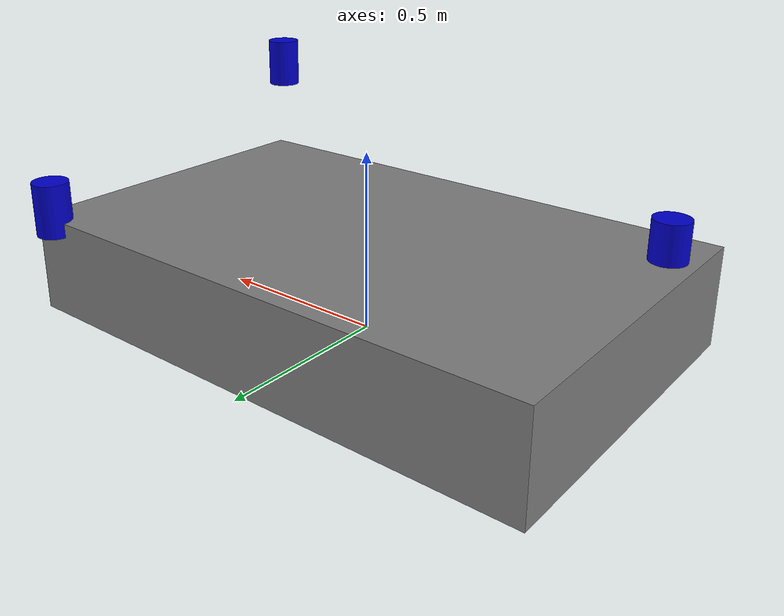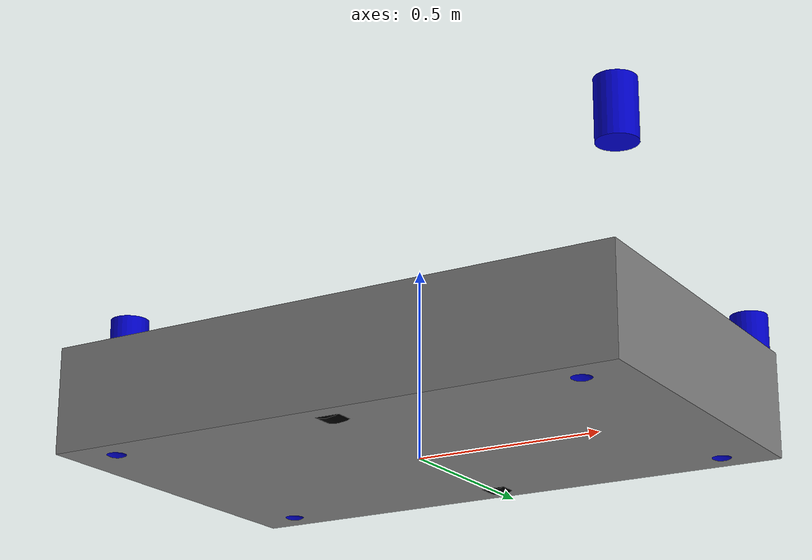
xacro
<?xml version="1.0" ?>
<robot name="agv" xmlns:xacro="http://ros.org/wiki/xacro">

  <!-- Configurations & Parameters -->
  <xacro:include filename="config/common_properties.xacro"/>
  <xacro:include filename="config/robot_dimensions.xacro"/>
  <xacro:include filename="config/lidar_correction.xacro"/>
  <xacro:include filename="config/camera_correction.xacro"/>
  <xacro:include filename="config/imu_joint.xacro"/>
  <xacro:include filename="agv.macros.xacro"/>
  <xacro:include filename="agv.gazebo.xacro"/>

  <!-- Base Footprint (Ground Plane Z=0) to Base Link Elevation -->
  <link name="base_footprint"/>
  <joint name="base_footprint_to_base_link_joint" type="fixed">
    <parent link="base_footprint"/>
    <child link="base_link"/>
    <origin xyz="0 0 ${-ground_contact_z}" rpy="0 0 0"/>
  </joint>

  <link name="base_link">
    <collision><geometry><box size="${chassis_length} ${chassis_width} ${chassis_height}"/></geometry></collision>
    <visual><geometry><box size="${chassis_length} ${chassis_width} ${chassis_height}"/></geometry><material name="grey"/></visual>
    <!-- Measured/CAD empirical mass matrix including internal battery/payload asymmetry -->
    <inertial>
      <mass value="${chassis_mass}" />
      <inertia ixx="3.9687" ixy="0.28534" ixz="0.11898" iyy="11.378" iyz="0.00735" izz="8.1939" />
    </inertial>
  </link>

  <!-- Drive Wheels (Symmetric Mounting based on wheel_track) -->
  <xacro:wheel wheel_side="left"  offset_y="${wheel_track / 2}"/>
  <xacro:wheel wheel_side="right" offset_y="${-wheel_track / 2}"/>

  <!-- Caster Wheel Pairs (Front & Back) -->
  <xacro:caster_pair location="front" offset_x="${caster_offset_x}"  offset_y="${caster_offset_y}" mass="${caster_mass}"/>
  <xacro:caster_pair location="back"  offset_x="${-caster_offset_x}" offset_y="${caster_offset_y}" mass="${caster_mass}"/>

  <!-- 2D & 3D LiDAR Sensors (Kinematics + Simulation Stream) -->
  <xacro:lidar_sensor name="front_lidar" x="${front_lidar_x}" y="${front_lidar_y}" z="${front_lidar_z}" roll="${front_lidar_roll}" pitch="${front_lidar_pitch}" yaw="${front_lidar_yaw}" topic_name="/front_lidar/scan" min_angle="-2.356" max_angle="2.356"/>
  <xacro:lidar_sensor name="rear_lidar"  x="${rear_lidar_x}"  y="${rear_lidar_y}"  z="${rear_lidar_z}"  roll="${rear_lidar_roll}"  pitch="${rear_lidar_pitch}"  yaw="${rear_lidar_yaw}"  topic_name="/rear_lidar/scan" min_angle="-2.356" max_angle="2.356"/>
  <xacro:lidar_sensor name="lidar_3d"    x="${lidar_3d_x}"    y="${lidar_3d_y}"    z="${lidar_3d_z}"    roll="${lidar_3d_roll}"    pitch="${lidar_3d_pitch}"    yaw="${lidar_3d_yaw}"    topic_name="/lidar_3d/points" mass="1.5" samples="1800" v_samples="16" v_min_angle="-0.261799" v_max_angle="0.261799" min_range="0.20" max_range="50.0" update_rate="10.0" noise_stddev="0.02"/>

  <!-- IMU Sensor -->
  <link name="imu_link">
    <visual>
      <geometry><box size="0.05 0.05 0.02"/></geometry>
      <material name="black"/>
    </visual>
  </link>
  <joint name="imu_joint" type="fixed">
    <parent link="base_link"/>
    <child link="imu_link"/>
    <origin xyz="${imu_x} ${imu_y} ${imu_z}" rpy="${imu_roll} ${imu_pitch} ${imu_yaw}"/>
  </joint>

  <!-- Cameras (Mounts + Optical Frames + Simulation Stream) -->
  <xacro:camera_mount name="camera_front_left"  x="${camera_front_left_x}"  y="${camera_front_left_y}"  z="${camera_front_left_z}"  roll="${camera_front_left_roll}"  pitch="${camera_front_left_pitch}"  yaw="${camera_front_left_yaw}"/>
  <xacro:camera_mount name="camera_front_right" x="${camera_front_right_x}" y="${camera_front_right_y}" z="${camera_front_right_z}" roll="${camera_front_right_roll}" pitch="${camera_front_right_pitch}" yaw="${camera_front_right_yaw}"/>
  <xacro:camera_mount name="camera_rear_left"   x="${camera_rear_left_x}"   y="${camera_rear_left_y}"   z="${camera_rear_left_z}"   roll="${camera_rear_left_roll}"   pitch="${camera_rear_left_pitch}"   yaw="${camera_rear_left_yaw}"/>
  <xacro:camera_mount name="camera_rear_right"  x="${camera_rear_right_x}"  y="${camera_rear_right_y}"  z="${camera_rear_right_z}"  roll="${camera_rear_right_roll}"  pitch="${camera_rear_right_pitch}"  yaw="${camera_rear_right_yaw}"/>

</robot>

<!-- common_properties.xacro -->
<robot name="agv" xmlns:xacro="http://ros.org/wiki/xacro">

  <!-- Active Color Definitions -->
  <material name="black">
    <color rgba="0.0 0.0 0.0 1.0"/>
  </material>

  <material name="blue">
    <color rgba="0.0 0.0 0.8 1.0"/>
  </material>

  <material name="grey">
    <color rgba="0.5 0.5 0.5 1.0"/>
  </material>

</robot>

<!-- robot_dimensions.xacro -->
<robot name="agv" xmlns:xacro="http://ros.org/wiki/xacro">

  <!-- Chassis Physical Dimensions & Mass -->
  <xacro:property name="chassis_length" value="1.558"/>
  <xacro:property name="chassis_width"  value="0.965"/>
  <xacro:property name="chassis_height" value="0.280"/>
  <xacro:property name="chassis_mass"   value="300.0"/>

  <!-- Drive Wheel Dimensions & Kinematics -->
  <xacro:property name="wheel_width"    value="0.05"/>
  <xacro:property name="wheel_radius"   value="0.100"/>
  <xacro:property name="wheel_mass"     value="2.0"/>
  <xacro:property name="wheel_track"    value="0.81298"/>
  <xacro:property name="wheel_offset_z" value="-0.04625"/>

  <!-- Ground Plane Contact Level (Z = -0.14625 m relative to base_link) -->
  <xacro:property name="ground_contact_z" value="${wheel_offset_z - wheel_radius}"/>

  <!-- Caster Wheel Dimensions & Placement (Coplanar with drive wheels at ground level) -->
  <xacro:property name="caster_radius"    value="0.062"/>
  <xacro:property name="caster_offset_x"  value="0.650"/>
  <xacro:property name="caster_offset_y"  value="0.400"/>
  <xacro:property name="caster_offset_z"  value="${ground_contact_z + caster_radius}"/>
  <xacro:property name="caster_mass"      value="5.2"/>

</robot>

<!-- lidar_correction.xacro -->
<robot name="agv" xmlns:xacro="http://ros.org/wiki/xacro">

  <!-- Front LiDAR Calibration Offsets -->
  <xacro:property name="front_lidar_x" value="0.71179" />
  <xacro:property name="front_lidar_y" value="0.47912" />
  <xacro:property name="front_lidar_z" value="0.17501" />
  <xacro:property name="front_lidar_roll" value="-3.1416" />
  <xacro:property name="front_lidar_pitch" value="0.0" />
  <xacro:property name="front_lidar_yaw" value="0.768395" />

  <!-- Rear LiDAR Calibration Offsets -->
  <xacro:property name="rear_lidar_x" value="-0.70179" />
  <xacro:property name="rear_lidar_y" value="-0.30912" />
  <xacro:property name="rear_lidar_z" value="0.17501" />
  <xacro:property name="rear_lidar_roll" value="-3.1416" />
  <xacro:property name="rear_lidar_pitch" value="0.0" />
  <xacro:property name="rear_lidar_yaw" value="-2.33875" />

  <!-- 3D LiDAR Calibration Offsets -->
  <xacro:property name="lidar_3d_x" value="0.82726" />
  <xacro:property name="lidar_3d_y" value="-0.55936" />
  <xacro:property name="lidar_3d_z" value="0.40005" />
  <xacro:property name="lidar_3d_roll" value="-3.1416" />
  <xacro:property name="lidar_3d_pitch" value="0.0" />
  <xacro:property name="lidar_3d_yaw" value="-2.33875" />

</robot>

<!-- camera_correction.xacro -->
<robot name="agv" xmlns:xacro="http://ros.org/wiki/xacro">

  <!-- Front Left Camera Mount Offsets -->
  <xacro:property name="camera_front_left_x" value="0.73448"/>
  <xacro:property name="camera_front_left_y" value="0.1567"/>
  <xacro:property name="camera_front_left_z" value="0.1225"/>
  <xacro:property name="camera_front_left_roll" value="0.0"/>
  <xacro:property name="camera_front_left_pitch" value="0.0"/>
  <xacro:property name="camera_front_left_yaw" value="-0.5236"/>

  <!-- Front Right Camera Mount Offsets -->
  <xacro:property name="camera_front_right_x" value="0.73448"/>
  <xacro:property name="camera_front_right_y" value="-0.1567"/>
  <xacro:property name="camera_front_right_z" value="0.1225"/>
  <xacro:property name="camera_front_right_roll" value="0.0"/>
  <xacro:property name="camera_front_right_pitch" value="0.0"/>
  <xacro:property name="camera_front_right_yaw" value="0.5236"/>

  <!-- Rear Left Camera Mount Offsets -->
  <xacro:property name="camera_rear_left_x" value="-0.73558"/>
  <xacro:property name="camera_rear_left_y" value="0.1568"/>
  <xacro:property name="camera_rear_left_z" value="0.1225"/>
  <xacro:property name="camera_rear_left_roll" value="0.0"/>
  <xacro:property name="camera_rear_left_pitch" value="0.0"/>
  <xacro:property name="camera_rear_left_yaw" value="-2.618"/>

  <!-- Rear Right Camera Mount Offsets -->
  <xacro:property name="camera_rear_right_x" value="-0.73558"/>
  <xacro:property name="camera_rear_right_y" value="-0.1568"/>
  <xacro:property name="camera_rear_right_z" value="0.1225"/>
  <xacro:property name="camera_rear_right_roll" value="0.0"/>
  <xacro:property name="camera_rear_right_pitch" value="0.0"/>
  <xacro:property name="camera_rear_right_yaw" value="2.618"/>

</robot>

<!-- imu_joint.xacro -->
<robot name="agv" xmlns:xacro="http://ros.org/wiki/xacro">

  <!-- IMU Sensor Calibration Offsets -->
  <xacro:property name="imu_x" value="0.0"/>
  <xacro:property name="imu_y" value="0.0"/>
  <xacro:property name="imu_z" value="0.100"/>
  <xacro:property name="imu_roll" value="0.0"/>
  <xacro:property name="imu_pitch" value="0.0"/>
  <xacro:property name="imu_yaw" value="0.0"/>

</robot>

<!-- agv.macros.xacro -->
<robot xmlns:xacro="http://ros.org/wiki/xacro">

  <!-- Inertia Calculation Helpers -->
  <xacro:macro name="cylinder_inertia" params="mass radius length">
    <inertia  ixx="${mass*(3*radius*radius + length*length)/12}" ixy="0" ixz="0"
              iyy="${mass*(3*radius*radius + length*length)/12}" iyz="0"
              izz="${mass*radius*radius/2}" />
  </xacro:macro>

  <xacro:macro name="box_inertia" params="mass size_x size_y size_z">
    <inertia  ixx="${mass*(size_y*size_y + size_z*size_z)/12}" ixy="0" ixz="0"
              iyy="${mass*(size_x*size_x + size_z*size_z)/12}" iyz="0"
              izz="${mass*(size_x*size_x + size_y*size_y)/12}" />
  </xacro:macro>

  <xacro:macro name="sphere_inertia" params="mass radius">
    <inertia ixx="${2*mass*radius*radius/5}" ixy="0" ixz="0"
             iyy="${2*mass*radius*radius/5}" iyz="0"
             izz="${2*mass*radius*radius/5}" />
  </xacro:macro>

  <!-- Drive Wheel Macro -->
  <xacro:macro name="wheel" params="wheel_side offset_y">
    <joint name="${wheel_side}_wheel_joint" type="continuous">
      <parent link="base_link"/>
      <child link="${wheel_side}_wheel"/>
      <origin xyz="0.0 ${offset_y} ${wheel_offset_z}" rpy="-1.57 0 0"/>
      <axis xyz="0 0 1"/>
    </joint>

    <link name="${wheel_side}_wheel">
      <visual>
        <geometry><cylinder length="${wheel_width}" radius="${wheel_radius}"/></geometry>
        <material name="black"/>
      </visual>
      <collision>
        <geometry><cylinder length="${wheel_width}" radius="${wheel_radius}"/></geometry>
      </collision>
      <inertial>
        <mass value="${wheel_mass}" />
        <xacro:cylinder_inertia mass="${wheel_mass}" radius="${wheel_radius}" length="${wheel_width}"/>
      </inertial>
    </link>
    <gazebo reference="${wheel_side}_wheel">
      <mu1>10.0</mu1>
      <mu2>10.0</mu2>
      <kp>500000.0</kp>
      <kd>10.0</kd>
      <maxVel>1.1</maxVel>
      <material>Gazebo/Black</material>
    </gazebo>
  </xacro:macro>

  <!-- Single Passive Caster Macro -->
  <xacro:macro name="caster" params="prefix offset_x offset_y mass:=${caster_mass} mu1:=0.0 mu2:=0.0">
    <joint name="${prefix}_caster_joint" type="fixed">
      <parent link="base_link"/>
      <child link="${prefix}_caster"/>
      <origin xyz="${offset_x} ${offset_y} ${caster_offset_z}" rpy="0 0 0"/>
    </joint>

    <link name="${prefix}_caster">
      <visual>
        <geometry><sphere radius="${caster_radius}" /></geometry>
        <material name="blue"/>
      </visual>
      <collision>
        <geometry><sphere radius="${caster_radius}"/></geometry>
      </collision>
      <inertial>
        <mass value="${mass}"/>
        <xacro:sphere_inertia mass="${mass}" radius="${caster_radius}"/>
      </inertial>
    </link>

    <gazebo reference="${prefix}_caster">
      <mu1>${mu1}</mu1>
      <mu2>${mu2}</mu2>
      <kp>1000000.0</kp>
      <kd>100.0</kd>
      <maxVel>1.0</maxVel>
      <material>Gazebo/Blue</material>
    </gazebo>
  </xacro:macro>

  <!-- Symmetric Caster Pair Macro (Left & Right) -->
  <xacro:macro name="caster_pair" params="location offset_x offset_y mass:=${caster_mass}">
    <xacro:caster prefix="left_${location}"  offset_x="${offset_x}" offset_y="${offset_y}"  mass="${mass}"/>
    <xacro:caster prefix="right_${location}" offset_x="${offset_x}" offset_y="${-offset_y}" mass="${mass}"/>
  </xacro:macro>

  <!-- Self-Contained Cylindrical LiDAR Macro (Kinematics + Gz Sim Sensor Stream) -->
  <xacro:macro name="lidar_sensor" params="name x y z roll pitch yaw topic_name mass:=0.5925 length:=0.151 radius:=0.05 samples:=360 v_samples:=1 h_resolution:=1 v_resolution:=1 min_angle:=-3.14159 max_angle:=3.14159 v_min_angle:=-0.261799 v_max_angle:=0.261799 min_range:=0.120 max_range:=15.0 range_resolution:=0.01 update_rate:=20.0 noise_stddev:=0.01">
    <link name="${name}_link">
      <visual>
        <geometry><cylinder length="${length}" radius="${radius}"/></geometry>
        <material name="blue"/>
      </visual>
      <collision>
        <geometry><cylinder length="${length}" radius="${radius}"/></geometry>
      </collision>
      <inertial>
        <mass value="${mass}" />
        <origin xyz="-7.88E-05 4.35E-05 -0.01694" rpy="0 0 0" />
        <xacro:cylinder_inertia mass="${mass}" radius="${radius}" length="${length}"/>
      </inertial>
    </link>
    <joint name="${name}_joint" type="fixed">
      <parent link="base_link"/>
      <child link="${name}_link"/>
      <origin xyz="${x} ${y} ${z}" rpy="${roll} ${pitch} ${yaw}"/>
    </joint>

    <!-- Encapsulated Gz Sim LiDAR Sensor -->
    <gazebo reference="${name}_link">
      <material>Gazebo/Blue</material>
      <sensor name="${name}_sensor" type="gpu_lidar">
        <always_on>true</always_on>
        <update_rate>${update_rate}</update_rate>
        <visualize>false</visualize>
        <topic>${topic_name}</topic>
        <gz_frame_id>${name}_link</gz_frame_id>
        <lidar>
          <scan>
            <horizontal>
              <samples>${samples}</samples>
              <resolution>${h_resolution}</resolution>
              <min_angle>${min_angle}</min_angle>
              <max_angle>${max_angle}</max_angle>
            </horizontal>
            <xacro:if value="${v_samples > 1}">
              <vertical>
                <samples>${v_samples}</samples>
                <resolution>${v_resolution}</resolution>
                <min_angle>${v_min_angle}</min_angle>
                <max_angle>${v_max_angle}</max_angle>
              </vertical>
            </xacro:if>
          </scan>
          <range>
            <min>${min_range}</min>
            <max>${max_range}</max>
            <resolution>${range_resolution}</resolution>
          </range>
          <noise>
            <type>gaussian</type>
            <mean>0.0</mean>
            <stddev>${noise_stddev}</stddev>
          </noise>
        </lidar>
      </sensor>
    </gazebo>
  </xacro:macro>

  <!-- Self-Contained Camera Macro (Kinematics + Optical Frame + Gz Sim Stream) -->
  <xacro:macro name="camera_mount" params="name x y z roll pitch yaw width:=640 height:=480 hfov:=1.5184 update_rate:=30.0">
    <link name="${name}_link">
      <visual>
        <geometry><box size="0.025 0.090 0.025"/></geometry>
        <material name="black"/>
      </visual>
      <collision>
        <geometry><box size="0.025 0.090 0.025"/></geometry>
      </collision>
      <inertial>
        <mass value="0.1"/>
        <origin xyz="0 0 0" rpy="0 0 0"/>
        <xacro:box_inertia mass="0.1" size_x="0.025" size_y="0.090" size_z="0.025"/>
      </inertial>
    </link>
    <joint name="${name}_joint" type="fixed">
      <parent link="base_link"/>
      <child link="${name}_link"/>
      <origin xyz="${x} ${y} ${z}" rpy="${roll} ${pitch} ${yaw}"/>
    </joint>

    <link name="${name}_color_optical_frame"/>
    <joint name="${name}_color_optical_joint" type="fixed">
      <parent link="${name}_link"/>
      <child link="${name}_color_optical_frame"/>
      <origin xyz="0 0 0" rpy="-1.57 0 -1.57"/>
    </joint>

    <!-- Encapsulated Gz Sim Camera Sensor -->
    <gazebo reference="${name}_link">
      <sensor name="${name}" type="camera">
        <always_on>true</always_on>
        <update_rate>${update_rate}</update_rate>
        <visualize>false</visualize>
        <topic>/${name}/image_raw</topic>
        <gz_frame_id>${name}_color_optical_frame</gz_frame_id>
        <camera>
          <horizontal_fov>${hfov}</horizontal_fov>
          <image>
            <width>${width}</width>
            <height>${height}</height>
            <format>R8G8B8</format>
          </image>
          <clip>
            <near>0.1</near>
            <far>15.0</far>
          </clip>
        </camera>
      </sensor>
    </gazebo>
  </xacro:macro>

</robot>
